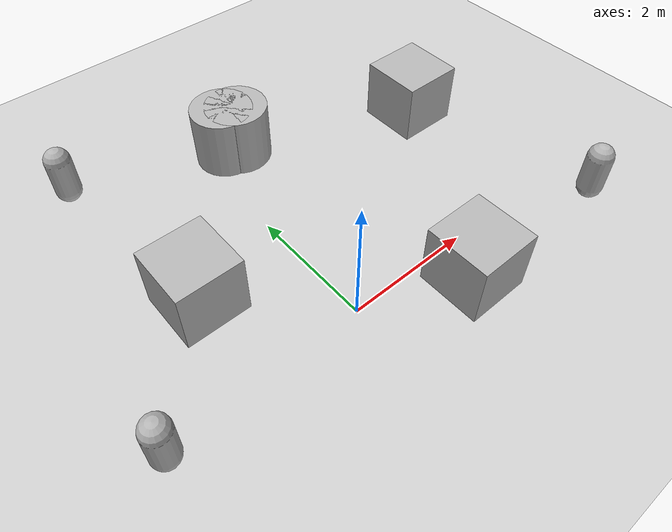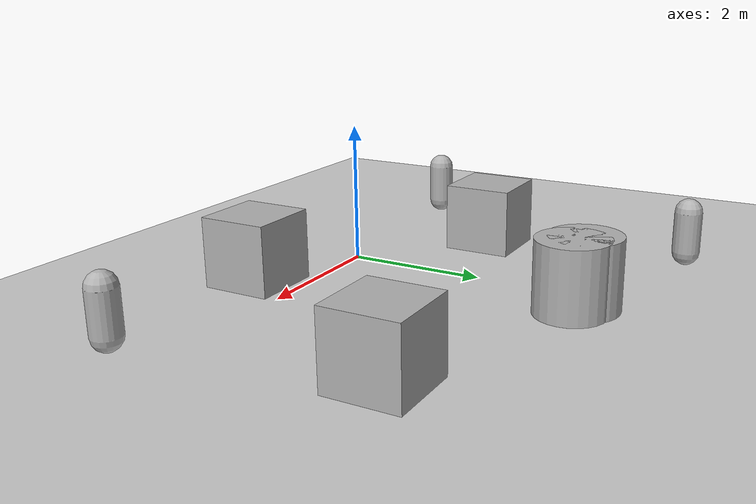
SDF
<sdf version='1.9'>
  <world name='empty'>
    <physics name='1ms' type='ignored'>
      <max_step_size>0.001</max_step_size>
      <real_time_factor>1</real_time_factor>
      <real_time_update_rate>1000</real_time_update_rate>
    </physics>
    <plugin name='gz::sim::systems::Physics' filename='ignition-gazebo-physics-system'/>
    <plugin name='gz::sim::systems::UserCommands' filename='ignition-gazebo-user-commands-system'/>
    <plugin name='gz::sim::systems::SceneBroadcaster' filename='ignition-gazebo-scene-broadcaster-system'/>
    <plugin name='gz::sim::systems::Contact' filename='ignition-gazebo-contact-system'/>
    <gravity>0 0 -9.8</gravity>
    <magnetic_field>6e-06 2.3e-05 -4.2e-05</magnetic_field>
    <atmosphere type='adiabatic'/>
    <scene>
      <ambient>0.4 0.4 0.4 1</ambient>
      <background>0.7 0.7 0.7 1</background>
      <shadows>true</shadows>
    </scene>
    <model name='ground_plane'>
      <static>true</static>
      <link name='link'>
        <collision name='collision'>
          <geometry>
            <plane>
              <normal>0 0 1</normal>
              <size>100 100</size>
            </plane>
          </geometry>
          <surface>
            <friction>
              <ode/>
            </friction>
            <bounce/>
            <contact/>
          </surface>
        </collision>
        <visual name='visual'>
          <geometry>
            <plane>
              <normal>0 0 1</normal>
              <size>100 100</size>
            </plane>
          </geometry>
          <material>
            <ambient>0.8 0.8 0.8 1</ambient>
            <diffuse>0.8 0.8 0.8 1</diffuse>
            <specular>0.8 0.8 0.8 1</specular>
          </material>
        </visual>
        <pose>0 0 0 0 -0 0</pose>
        <inertial>
          <pose>0 0 0 0 -0 0</pose>
          <mass>1</mass>
          <inertia>
            <ixx>1</ixx>
            <ixy>0</ixy>
            <ixz>0</ixz>
            <iyy>1</iyy>
            <iyz>0</iyz>
            <izz>1</izz>
          </inertia>
        </inertial>
        <enable_wind>false</enable_wind>
      </link>
      <pose>0 0 0 0 -0 0</pose>
      <self_collide>false</self_collide>
    </model>
    <model name='box'>
      <pose>3.49783 2.5384 0.5 0 -0 0</pose>
      <link name='box_link'>
        <inertial>
          <inertia>
            <ixx>0.16666</ixx>
            <ixy>0</ixy>
            <ixz>0</ixz>
            <iyy>0.16666</iyy>
            <iyz>0</iyz>
            <izz>0.16666</izz>
          </inertia>
          <mass>1</mass>
          <pose>0 0 0 0 -0 0</pose>
        </inertial>
        <collision name='box_collision'>
          <geometry>
            <box>
              <size>1 1 1</size>
            </box>
          </geometry>
          <surface>
            <friction>
              <ode/>
            </friction>
            <bounce/>
            <contact/>
          </surface>
        </collision>
        <visual name='box_visual'>
          <geometry>
            <box>
              <size>1 1 1</size>
            </box>
          </geometry>
          <material>
            <ambient>0.3 0.3 0.3 1</ambient>
            <diffuse>0.7 0.7 0.7 1</diffuse>
            <specular>1 1 1 1</specular>
          </material>
        </visual>
        <pose>0 0 0 0 -0 0</pose>
        <enable_wind>false</enable_wind>
      </link>
      <static>false</static>
      <self_collide>false</self_collide>
    </model>
    <model name='box_0'>
      <pose>1.57611 -0.645083 0.5 0 -0 0</pose>
      <link name='box_link'>
        <inertial>
          <inertia>
            <ixx>0.16666</ixx>
            <ixy>0</ixy>
            <ixz>0</ixz>
            <iyy>0.16666</iyy>
            <iyz>0</iyz>
            <izz>0.16666</izz>
          </inertia>
          <mass>1</mass>
          <pose>0 0 0 0 -0 0</pose>
        </inertial>
        <collision name='box_collision'>
          <geometry>
            <box>
              <size>1 1 1</size>
            </box>
          </geometry>
          <surface>
            <friction>
              <ode/>
            </friction>
            <bounce/>
            <contact/>
          </surface>
        </collision>
        <visual name='box_visual'>
          <geometry>
            <box>
              <size>1 1 1</size>
            </box>
          </geometry>
          <material>
            <ambient>0.3 0.3 0.3 1</ambient>
            <diffuse>0.7 0.7 0.7 1</diffuse>
            <specular>1 1 1 1</specular>
          </material>
        </visual>
        <pose>0 0 0 0 -0 0</pose>
        <enable_wind>false</enable_wind>
      </link>
      <static>false</static>
      <self_collide>false</self_collide>
    </model>
    <model name='capsule'>
      <pose>4.23218 -0.702482 0.5 0 -0 0</pose>
      <link name='capsule_link'>
        <inertial>
          <inertia>
            <ixx>0.074153999999999998</ixx>
            <ixy>0</ixy>
            <ixz>0</ixz>
            <iyy>0.074153999999999998</iyy>
            <iyz>0</iyz>
            <izz>0.018769000000000001</izz>
          </inertia>
          <mass>1</mass>
          <pose>0 0 0 0 -0 0</pose>
        </inertial>
        <collision name='capsule_collision'>
          <geometry>
            <capsule>
              <radius>0.20000000000000001</radius>
              <length>0.59999999999999998</length>
            </capsule>
          </geometry>
          <surface>
            <friction>
              <ode/>
            </friction>
            <bounce/>
            <contact/>
          </surface>
        </collision>
        <visual name='capsule_visual'>
          <geometry>
            <capsule>
              <radius>0.20000000000000001</radius>
              <length>0.59999999999999998</length>
            </capsule>
          </geometry>
          <material>
            <ambient>0.3 0.3 0.3 1</ambient>
            <diffuse>0.7 0.7 0.7 1</diffuse>
            <specular>1 1 1 1</specular>
          </material>
        </visual>
        <pose>0 0 0 0 -0 0</pose>
        <enable_wind>false</enable_wind>
      </link>
      <static>false</static>
      <self_collide>false</self_collide>
    </model>
    <model name='capsule_0'>
      <pose>-1.96701 4.47188 0.5 0 -0 0</pose>
      <link name='capsule_link'>
        <inertial>
          <inertia>
            <ixx>0.074153999999999998</ixx>
            <ixy>0</ixy>
            <ixz>0</ixz>
            <iyy>0.074153999999999998</iyy>
            <iyz>0</iyz>
            <izz>0.018769000000000001</izz>
          </inertia>
          <mass>1</mass>
          <pose>0 0 0 0 -0 0</pose>
        </inertial>
        <collision name='capsule_collision'>
          <geometry>
            <capsule>
              <radius>0.20000000000000001</radius>
              <length>0.59999999999999998</length>
            </capsule>
          </geometry>
          <surface>
            <friction>
              <ode/>
            </friction>
            <bounce/>
            <contact/>
          </surface>
        </collision>
        <visual name='capsule_visual'>
          <geometry>
            <capsule>
              <radius>0.20000000000000001</radius>
              <length>0.59999999999999998</length>
            </capsule>
          </geometry>
          <material>
            <ambient>0.3 0.3 0.3 1</ambient>
            <diffuse>0.7 0.7 0.7 1</diffuse>
            <specular>1 1 1 1</specular>
          </material>
        </visual>
        <pose>0 0 0 0 -0 0</pose>
        <enable_wind>false</enable_wind>
      </link>
      <static>false</static>
      <self_collide>false</self_collide>
    </model>
    <model name='capsule_1'>
      <pose>-3.00247 -0.114489 0.5 0 -0 0</pose>
      <link name='capsule_link'>
        <inertial>
          <inertia>
            <ixx>0.074153999999999998</ixx>
            <ixy>0</ixy>
            <ixz>0</ixz>
            <iyy>0.074153999999999998</iyy>
            <iyz>0</iyz>
            <izz>0.018769000000000001</izz>
          </inertia>
          <mass>1</mass>
          <pose>0 0 0 0 -0 0</pose>
        </inertial>
        <collision name='capsule_collision'>
          <geometry>
            <capsule>
              <radius>0.20000000000000001</radius>
              <length>0.59999999999999998</length>
            </capsule>
          </geometry>
          <surface>
            <friction>
              <ode/>
            </friction>
            <bounce/>
            <contact/>
          </surface>
        </collision>
        <visual name='capsule_visual'>
          <geometry>
            <capsule>
              <radius>0.20000000000000001</radius>
              <length>0.59999999999999998</length>
            </capsule>
          </geometry>
          <material>
            <ambient>0.3 0.3 0.3 1</ambient>
            <diffuse>0.7 0.7 0.7 1</diffuse>
            <specular>1 1 1 1</specular>
          </material>
        </visual>
        <pose>0 0 0 0 -0 0</pose>
        <enable_wind>false</enable_wind>
      </link>
      <static>false</static>
      <self_collide>false</self_collide>
    </model>
    <model name='cylinder'>
      <pose>0.657053 3.60751 0.5 0 -0 0</pose>
      <link name='cylinder_link'>
        <inertial>
          <inertia>
            <ixx>0.14580000000000001</ixx>
            <ixy>0</ixy>
            <ixz>0</ixz>
            <iyy>0.14580000000000001</iyy>
            <iyz>0</iyz>
            <izz>0.125</izz>
          </inertia>
          <mass>1</mass>
          <pose>0 0 0 0 -0 0</pose>
        </inertial>
        <collision name='cylinder_collision'>
          <geometry>
            <cylinder>
              <radius>0.5</radius>
              <length>1</length>
            </cylinder>
          </geometry>
          <surface>
            <friction>
              <ode/>
            </friction>
            <bounce/>
            <contact/>
          </surface>
        </collision>
        <visual name='cylinder_visual'>
          <geometry>
            <cylinder>
              <radius>0.5</radius>
              <length>1</length>
            </cylinder>
          </geometry>
          <material>
            <ambient>0.3 0.3 0.3 1</ambient>
            <diffuse>0.7 0.7 0.7 1</diffuse>
            <specular>1 1 1 1</specular>
          </material>
        </visual>
        <pose>0 0 0 0 -0 0</pose>
        <enable_wind>false</enable_wind>
      </link>
      <static>false</static>
      <self_collide>false</self_collide>
    </model>
    <model name='cylinder_0'>
      <pose>0.444741 3.69804 0.5 0 -0 0</pose>
      <link name='cylinder_link'>
        <inertial>
          <inertia>
            <ixx>0.14580000000000001</ixx>
            <ixy>0</ixy>
            <ixz>0</ixz>
            <iyy>0.14580000000000001</iyy>
            <iyz>0</iyz>
            <izz>0.125</izz>
          </inertia>
          <mass>1</mass>
          <pose>0 0 0 0 -0 0</pose>
        </inertial>
        <collision name='cylinder_collision'>
          <geometry>
            <cylinder>
              <radius>0.5</radius>
              <length>1</length>
            </cylinder>
          </geometry>
          <surface>
            <friction>
              <ode/>
            </friction>
            <bounce/>
            <contact/>
          </surface>
        </collision>
        <visual name='cylinder_visual'>
          <geometry>
            <cylinder>
              <radius>0.5</radius>
              <length>1</length>
            </cylinder>
          </geometry>
          <material>
            <ambient>0.3 0.3 0.3 1</ambient>
            <diffuse>0.7 0.7 0.7 1</diffuse>
            <specular>1 1 1 1</specular>
          </material>
        </visual>
        <pose>0 0 0 0 -0 0</pose>
        <enable_wind>false</enable_wind>
      </link>
      <static>false</static>
      <self_collide>false</self_collide>
    </model>
    <model name='box_1'>
      <pose>-1.53591 1.49237 0.5 0 -0 0</pose>
      <link name='box_link'>
        <inertial>
          <inertia>
            <ixx>0.16666</ixx>
            <ixy>0</ixy>
            <ixz>0</ixz>
            <iyy>0.16666</iyy>
            <iyz>0</iyz>
            <izz>0.16666</izz>
          </inertia>
          <mass>1</mass>
          <pose>0 0 0 0 -0 0</pose>
        </inertial>
        <collision name='box_collision'>
          <geometry>
            <box>
              <size>1 1 1</size>
            </box>
          </geometry>
          <surface>
            <friction>
              <ode/>
            </friction>
            <bounce/>
            <contact/>
          </surface>
        </collision>
        <visual name='box_visual'>
          <geometry>
            <box>
              <size>1 1 1</size>
            </box>
          </geometry>
          <material>
            <ambient>0.3 0.3 0.3 1</ambient>
            <diffuse>0.7 0.7 0.7 1</diffuse>
            <specular>1 1 1 1</specular>
          </material>
        </visual>
        <pose>0 0 0 0 -0 0</pose>
        <enable_wind>false</enable_wind>
      </link>
      <static>false</static>
      <self_collide>false</self_collide>
    </model>
    <light name='sun' type='directional'>
      <pose>0 0 10 0 -0 0</pose>
      <cast_shadows>true</cast_shadows>
      <intensity>1</intensity>
      <direction>-0.5 0.1 -0.9</direction>
      <diffuse>0.8 0.8 0.8 1</diffuse>
      <specular>0.2 0.2 0.2 1</specular>
      <attenuation>
        <range>1000</range>
        <linear>0.01</linear>
        <constant>0.90000000000000002</constant>
        <quadratic>0.001</quadratic>
      </attenuation>
      <spot>
        <inner_angle>0</inner_angle>
        <outer_angle>0</outer_angle>
        <falloff>0</falloff>
      </spot>
    </light>
  </world>
</sdf>
